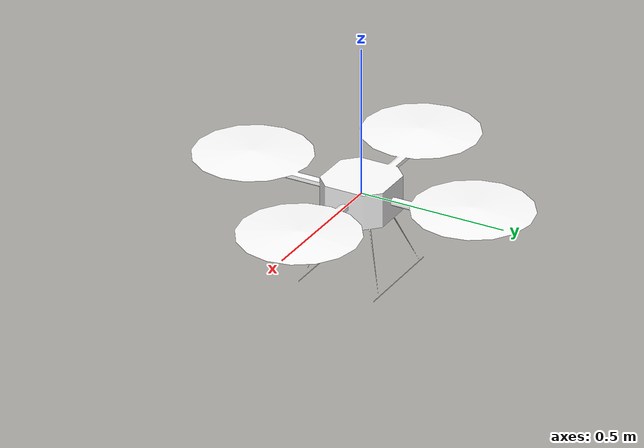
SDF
<?xml version="1.0" ?>
<sdf version="1.5">
  <model name="quadrotor">
    <link name="quadrotor_link">
      <pose>0 0 0 0 0 0</pose>
      <inertial>
        <mass>1.316</mass>
        <inertia>
          <ixx>0.0128</ixx>
          <ixy>0</ixy>
          <ixz>0</ixz>
          <iyy>0.0128</iyy>
          <iyz>0</iyz>
          <izz>0.0218</izz>
        </inertia>
      </inertial>
      <collision name="collision">
        <geometry>
          <mesh>
            <scale>0.2 0.2 0.2</scale>
            <uri>model://quadrotor/meshes/quadrotor.dae</uri>
          </mesh>
        </geometry>
      </collision>
      <visual name="visual">
        <geometry>
          <mesh>
            <scale>0.2 0.2 0.2</scale>
            <uri>model://quadrotor/meshes/quadrotor.dae</uri>
          </mesh>
        </geometry>

        <material>
          <diffuse> 1.0 1.0 1.0 1.0</diffuse>
        </material>
      </visual>
    </link>
  </model>
</sdf>
